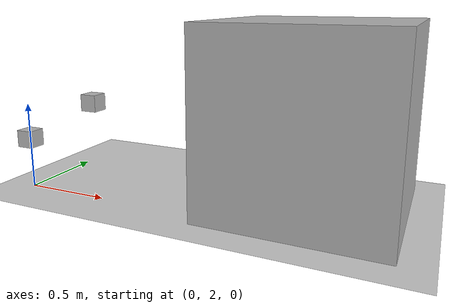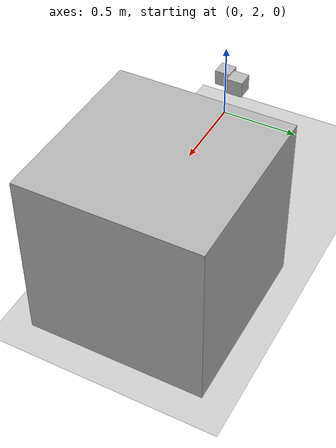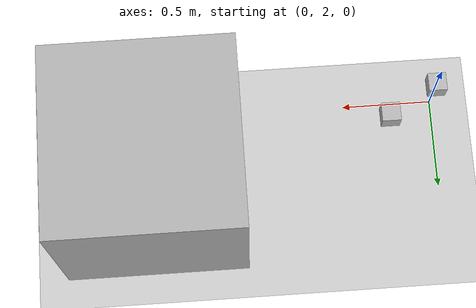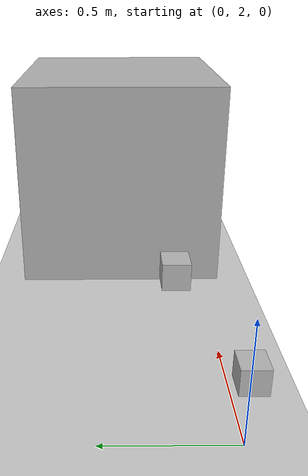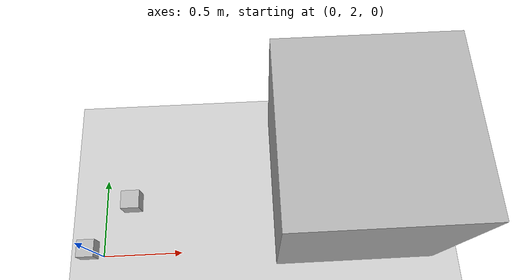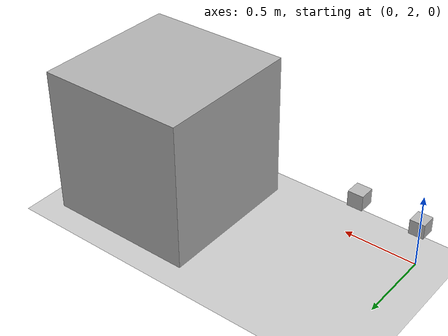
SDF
<?xml version="1.0" ?>
<sdf version="1.6">
  <world name="default">
    <plugin
      filename="gz-sim-apply-link-wrench-system"
      name="gz::sim::systems::ApplyLinkWrench">
    </plugin>

    <physics name="1ms" type="ignored">
      <max_step_size>0.001</max_step_size>
      <real_time_factor>1.0</real_time_factor>
    </physics>
    <plugin
      filename="gz-sim-physics-system"
      name="gz::sim::systems::Physics">
    </plugin>
    <plugin
      filename="gz-sim-user-commands-system"
      name="gz::sim::systems::UserCommands">
    </plugin>
    <plugin
      filename="gz-sim-scene-broadcaster-system"
      name="gz::sim::systems::SceneBroadcaster">
    </plugin>
    <plugin
      filename="gz-sim-sensors-system"
      name="gz::sim::systems::Sensors">
      <render_engine>ogre2</render_engine>
    </plugin>

    <gui fullscreen="0">
      <plugin filename="MinimalScene" name="3D View">
        <gz-gui>
            <title>3D View</title>
            <property type="bool" key="showTitleBar">false</property>
            <property type="string" key="state">docked</property>
        </gz-gui>
        <engine>ogre2</engine>
        <scene>scene</scene>
        <ambient_light>0.4 0.4 0.4</ambient_light>
        <background_color>0.8 0.8 0.8</background_color>
        <camera_pose>-6 0 6 0 0.5 0</camera_pose>
      </plugin>

      <!-- Plugins that add functionality to the scene -->
      <plugin filename="EntityContextMenuPlugin" name="Entity context menu">
          <gz-gui>
              <property key="state" type="string">floating</property>
              <property key="width" type="double">5</property>
              <property key="height" type="double">5</property>
              <property key="showTitleBar" type="bool">false</property>
          </gz-gui>
      </plugin>

      <plugin filename="GzSceneManager" name="Scene Manager">
          <gz-gui>
              <property key="resizable" type="bool">false</property>
              <property key="width" type="double">5</property>
              <property key="height" type="double">5</property>
              <property key="state" type="string">floating</property>
              <property key="showTitleBar" type="bool">false</property>
          </gz-gui>
      </plugin>

      <plugin filename="InteractiveViewControl" name="Interactive view control">
          <gz-gui>
              <property key="resizable" type="bool">false</property>
              <property key="width" type="double">5</property>
              <property key="height" type="double">5</property>
              <property key="state" type="string">floating</property>
              <property key="showTitleBar" type="bool">false</property>
          </gz-gui>
      </plugin>

      <plugin filename="CameraTracking" name="Camera Tracking">
          <gz-gui>
              <property key="resizable" type="bool">false</property>
              <property key="width" type="double">5</property>
              <property key="height" type="double">5</property>
              <property key="state" type="string">floating</property>
              <property key="showTitleBar" type="bool">false</property>
          </gz-gui>
      </plugin>

      <plugin filename="MarkerManager" name="Marker manager">
          <gz-gui>
              <property key="resizable" type="bool">false</property>
              <property key="width" type="double">5</property>
              <property key="height" type="double">5</property>
              <property key="state" type="string">floating</property>
              <property key="showTitleBar" type="bool">false</property>
          </gz-gui>
      </plugin>

      <plugin filename="SelectEntities" name="Select Entities">
          <gz-gui>
              <property key="resizable" type="bool">false</property>
              <property key="width" type="double">5</property>
              <property key="height" type="double">5</property>
              <property key="state" type="string">floating</property>
              <property key="showTitleBar" type="bool">false</property>
          </gz-gui>
      </plugin>

      <plugin filename="Spawn" name="Spawn Entities">
          <gz-gui>
              <property key="resizable" type="bool">false</property>
              <property key="width" type="double">5</property>
              <property key="height" type="double">5</property>
              <property key="state" type="string">floating</property>
              <property key="showTitleBar" type="bool">false</property>
          </gz-gui>
      </plugin>

      <plugin filename="VisualizationCapabilities" name="Visualization Capabilities">
          <gz-gui>
              <property key="resizable" type="bool">false</property>
              <property key="width" type="double">5</property>
              <property key="height" type="double">5</property>
              <property key="state" type="string">floating</property>
              <property key="showTitleBar" type="bool">false</property>
          </gz-gui>
      </plugin>

    <!-- World control -->
    <plugin filename="WorldControl" name="World control">
        <gz-gui>
            <title>World control</title>
            <property type="bool" key="showTitleBar">false</property>
            <property type="bool" key="resizable">false</property>
            <property type="double" key="height">72</property>
            <property type="double" key="z">1</property>
            <property type="string" key="state">floating</property>
            <anchors target="3D View">
                <line own="left" target="left"/>
                <line own="bottom" target="bottom"/>
            </anchors>
        </gz-gui>
        <play_pause>true</play_pause>
        <step>true</step>
        <start_paused>true</start_paused>
        <use_event>true</use_event>
    </plugin>

    <!-- World statistics -->
    <plugin filename="WorldStats" name="World stats">
        <gz-gui>
            <title>World stats</title>
            <property type="bool" key="showTitleBar">false</property>
            <property type="bool" key="resizable">false</property>
            <property type="double" key="height">110</property>
            <property type="double" key="width">290</property>
            <property type="double" key="z">1</property>
            <property type="string" key="state">floating</property>
            <anchors target="3D View">
                <line own="right" target="right"/>
                <line own="bottom" target="bottom"/>
            </anchors>
        </gz-gui>
        <sim_time>true</sim_time>
        <real_time>true</real_time>
        <real_time_factor>true</real_time_factor>
        <iterations>true</iterations>
    </plugin>

    <!-- Insert simple shapes -->
    <plugin filename="Shapes" name="Shapes">
        <gz-gui>
            <property key="resizable" type="bool">false</property>
            <property key="x" type="double">0</property>
            <property key="y" type="double">0</property>
            <property key="width" type="double">250</property>
            <property key="height" type="double">50</property>
            <property key="state" type="string">floating</property>
            <property key="showTitleBar" type="bool">false</property>
            <property key="cardBackground" type="string">#666666</property>
        </gz-gui>
    </plugin>

    <!-- Insert lights -->
    <plugin filename="Lights" name="Lights">
        <gz-gui>
            <property key="resizable" type="bool">false</property>
            <property key="x" type="double">250</property>
            <property key="y" type="double">0</property>
            <property key="width" type="double">150</property>
            <property key="height" type="double">50</property>
            <property key="state" type="string">floating</property>
            <property key="showTitleBar" type="bool">false</property>
            <property key="cardBackground" type="string">#666666</property>
        </gz-gui>
    </plugin>

    <!-- Translate / rotate -->
    <plugin filename="TransformControl" name="Transform control">
        <gz-gui>
            <property key="resizable" type="bool">false</property>
            <property key="x" type="double">0</property>
            <property key="y" type="double">50</property>
            <property key="width" type="double">250</property>
            <property key="height" type="double">50</property>
            <property key="state" type="string">floating</property>
            <property key="showTitleBar" type="bool">false</property>
            <property key="cardBackground" type="string">#777777</property>
        </gz-gui>
    </plugin>

    <!-- Inspector -->
    <plugin filename="ComponentInspector" name="Component inspector">
        <gz-gui>
            <property type="bool" key="showTitleBar">false</property>
            <property type="string" key="state">docked</property>
        </gz-gui>
    </plugin>

    <!-- Entity tree -->
    <plugin filename="EntityTree" name="Entity tree">
        <gz-gui>
            <property type="bool" key="showTitleBar">false</property>
            <property type="string" key="state">docked</property>
        </gz-gui>
    </plugin>

        <!-- Image Display -->
    <plugin filename="ImageDisplay" name="Image Display">
        <gz-gui>
            <property type="bool" key="showTitleBar">false</property>
            <property type="string" key="state">docked</property>
        </gz-gui>
        <topic>camera</topic>
    </plugin>
  </gui>

    <light type="directional" name="sun">
      <cast_shadows>true</cast_shadows>
      <pose>0 0 10 0 0 0</pose>
      <diffuse>1 1 1 1</diffuse>
      <specular>0.5 0.5 0.5 1</specular>
      <direction>-0.5 0.1 -0.9</direction>
    </light>

    <model name="ground_plane">
      <static>true</static>
      <link name="link">
        <collision name="collision">
          <geometry>
            <plane>
              <normal>0 0 1</normal>
              <size>100 100</size>
            </plane>
          </geometry>
        </collision>
        <visual name="visual">
          <geometry>
            <plane>
              <normal>0 0 1</normal>
              <size>100 100</size>
            </plane>
          </geometry>
          <material>
            <ambient>0.8 0.8 0.8 1</ambient>
            <diffuse>0.8 0.8 0.8 1</diffuse>
            <specular>0.8 0.8 0.8 1</specular>
          </material>
        </visual>
      </link>
    </model>

    <model name='box'>
      <pose>1.6 2.4 0.5 0 0 0</pose>
      <link name='box_link'>
        <inertial>
          <inertia>
            <ixx>0.16666</ixx>
            <ixy>0</ixy>
            <ixz>0</ixz>
            <iyy>0.16666</iyy>
            <iyz>0</iyz>
            <izz>0.16666</izz>
          </inertia>
          <mass>1</mass>
          <pose>0 0 0 0 0 0</pose>
        </inertial>
        <collision name='box_collision'>
          <geometry>
            <box>
              <size>1 1 1</size>
            </box>
          </geometry>
          <surface>
            <friction>
              <ode/>
            </friction>
            <bounce/>
            <contact/>
          </surface>
        </collision>
        <visual name='box_visual'>
          <geometry>
            <box>
              <size>1 1 1</size>
            </box>
          </geometry>
          <material>
            <ambient>0.3 0.3 0.3 1</ambient>
            <diffuse>0.7 0.7 0.7 1</diffuse>
            <specular>1 1 1 1</specular>
          </material>
        </visual>
        <pose>0 0 0 0 0 0</pose>
        <enable_wind>false</enable_wind>
      </link>
      <static>false</static>
      <self_collide>false</self_collide>
    </model>

    <!-- wide-angle camera model with lens flare plugin -->
    <model name="wide_angle_camera_lensflare">
      <static>true</static>
      <pose>0.3 2.22 0.5 0 0 0</pose>
      <link name="link">
        <visual name="visual">
          <geometry>
            <box>
              <size>0.1 0.1 0.1</size>
            </box>
          </geometry>
        </visual>
        <sensor name="wide_angle_camera" type="wideanglecamera">
          <camera>
            <horizontal_fov>3.14159</horizontal_fov>
            <image>
              <width>320</width>
              <height>240</height>
            </image>
            <clip>
              <near>0.1</near>
              <far>100</far>
            </clip>
            <lens>
              <type>equidistant</type>
              <scale_to_hfov>true</scale_to_hfov>
              <cutoff_angle>1.5707</cutoff_angle>
              <env_texture_size>512</env_texture_size>
            </lens>
          </camera>
          <always_on>1</always_on>
          <update_rate>30</update_rate>
          <visualize>true</visualize>
          <topic>wide_angle_camera</topic>
          <plugin
            filename="gz-sim-lens-flare-system"
            name="gz::sim::systems::LensFlare">
          </plugin>
        </sensor>
      </link>
    </model>

    <!-- camera model with lens flare plugin -->
    <model name="camera_lensflare">
      <static>true</static>
      <pose>0 2 0.3 0 0 0</pose>
      <link name="link">
        <visual name="visual">
          <geometry>
            <box>
              <size>0.1 0.1 0.1</size>
            </box>
          </geometry>
        </visual>
        <sensor name="camera" type="camera">
          <camera>
            <horizontal_fov>1.047</horizontal_fov>
            <image>
              <width>320</width>
              <height>240</height>
            </image>
            <clip>
              <near>0.1</near>
              <far>100</far>
            </clip>
          </camera>
          <always_on>1</always_on>
          <update_rate>30</update_rate>
          <visualize>true</visualize>
          <topic>camera</topic>
          <plugin
            filename="gz-sim-lens-flare-system"
            name="gz::sim::systems::LensFlare">
            <scale>0.5</scale>
            <color>3 3 3</color>
          </plugin>
        </sensor>
      </link>
    </model>

  </world>
</sdf>
